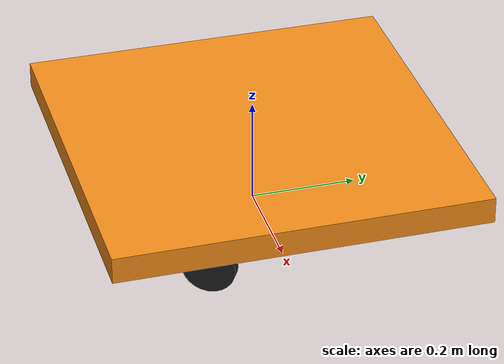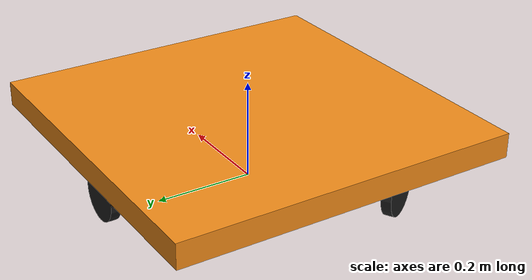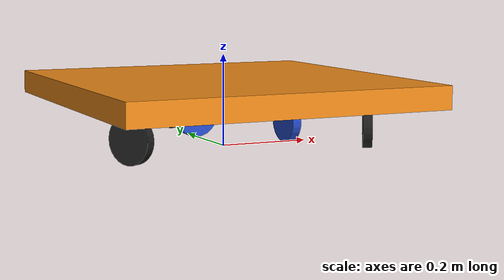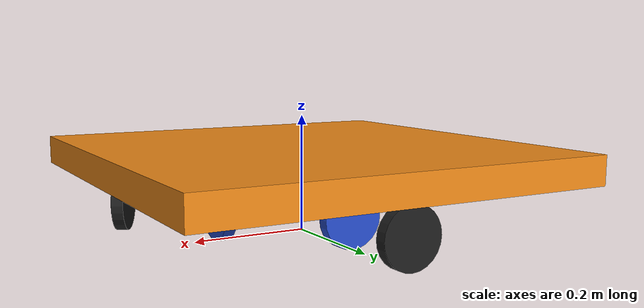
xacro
<?xml version="1.0"?>
<!-- Basic differential drive mobile base -->
<robot xmlns:xacro="http://www.ros.org/wiki/xacro" name="diffdrive_robot">
  <xacro:arg name="prefix" default="" />

  <xacro:include filename="/home/nikhil/Work/ROS/control_ws/src/three_wheel/description/urdf/three_wheel_description.urdf.xacro" />

  <!-- Import Rviz colors -->
  <xacro:include filename="$(find three_wheel)/urdf/three_wheel.materials.xacro" />

  <!-- Import diffbot ros2_control description -->
  <xacro:include filename="$(find three_wheel)/ros2_control/three_wheel.ros2_control.xacro" />

  <xacro:three_wheel prefix="$(arg prefix)" />

  <xacro:three_wheel_ros2_control name="ThreeOmniwheelController" prefix="$(arg prefix)" />

</robot>

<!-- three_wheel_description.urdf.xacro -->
<robot xmlns:xacro="http://www.ros.org/wiki/xacro">

  <xacro:macro name="three_wheel" params="prefix">

  <!-- Constants for robot dimensions -->
  <xacro:property name="PI" value="3.1415926535897931"/>
  <xacro:property name="base_mass" value="0.3" /> <!-- arbitrary value for base mass -->
  <xacro:property name="base_width" value="0.7" />
  <xacro:property name="base_length" value="0.7" />
  <xacro:property name="base_height" value="0.05" />
  <xacro:property name="wheel_mass" value="0.3" /> <!-- arbitrary value for wheel mass -->
  <xacro:property name="wheel_len" value="0.020" />
  <xacro:property name="dist_centre" value="0.312" />
  <xacro:property name="wheel_radius" value="0.05" />
  <xacro:property name="caster_wheel_mass" value="0.1" /> <!-- arbitrary value for caster wheel mass -->
  <xacro:property name="caster_wheel_radius" value="0.015" />
  <xacro:property name="z_offset" value="-${base_height/2}" /> <!-- Space btw top of beam and the each joint -->

  <link name="base_footprint" />    <!-- set base link name -->

  <joint name="footprint_base_joint" type="fixed">     <!-- set joint name and type-->
      <parent link="base_footprint" />
      <child link="base_link" />
      <origin xyz="0 0 ${(2 * wheel_radius) + (base_height / 2.0)}" rpy="0 0 0" />
  </joint>

  <!-- Base Link -->
  <link name="base_link">
    <collision>
      <origin xyz="0 0 0" rpy="0 0 0"/>
      <geometry>
        <box size="${base_width} ${base_length} ${base_height}"/>
      </geometry>
    </collision>

    <visual>
      <origin xyz="0 0 0" rpy="0 0 0"/>
      <geometry>
        <box size="${base_width} ${base_length} ${base_height}"/>
      </geometry>
      <material name="orange"/>
    </visual>

    <inertial>
      <origin xyz="0 0 0" rpy="0 0 0"/>
      <mass value="${base_mass}"/>
      <inertia
        ixx="${base_mass / 12.0 * (base_length*base_length + base_height*base_height)}" ixy="0.0" ixz="0.0"
        iyy="${base_mass / 12.0 * (base_height*base_height + base_length*base_length)}" iyz="0.0"
        izz="${base_mass / 12.0 * (base_width*base_width + base_height*base_height)}"/>
    </inertial>
  </link>

    <joint name="front_wheel_joint" type="continuous">
      <parent link="base_link"/>
      <child link="front_wheel"/>
      <origin xyz="0 ${dist_centre} ${-((wheel_radius) + (base_height / 2.0))}" rpy="0 0 0"/>
      <axis xyz="0 1 0"/>
      <dynamics damping="0.2"/>
    </joint>

    <!-- front wheel Link -->
    <link name="front_wheel">
      <collision>
        <origin xyz="0 0 0" rpy="${PI/2} 0 0"/>
        <geometry>
          <cylinder length="${wheel_len}" radius="${wheel_radius}"/>
        </geometry>
      </collision>

      <visual>
        <origin xyz="0 0 0" rpy="${PI/2} 0 0"/>
        <geometry>
          <cylinder length="${wheel_len}" radius="${wheel_radius}"/>
        </geometry>
        <material name="black"/>
      </visual>

      <inertial>
        <origin xyz="0 0 0" rpy="${PI/2} 0 0"/>
        <mass value="${wheel_mass}"/>
        <inertia
          ixx="${wheel_mass / 12.0 * (3*wheel_radius*wheel_radius + wheel_len*wheel_len)}" ixy="0.0" ixz="0.0"
          iyy="${wheel_mass / 12.0 * (3*wheel_radius*wheel_radius + wheel_len*wheel_len)}" iyz="0.0"
          izz="${wheel_mass / 2.0 * wheel_radius*wheel_radius}"/>
      </inertial>
    </link>

    <joint name="back_right_wheel_joint" type="continuous">
      <parent link="base_link"/>
      <child link="back_right_wheel"/>
      <origin xyz="${(dist_centre * 0.866)} ${-(dist_centre * 0.5)} ${-((wheel_radius) + (base_height / 2.0))}" rpy="0 0 ${PI / 3}"/>
      <axis xyz="0 1 0"/>
      <dynamics damping="0.2"/>
    </joint>

    <!-- right wheel Link -->
    <link name="back_right_wheel">
      <collision>
        <origin xyz="0 0 0" rpy="${PI/2} 0 0"/>
        <geometry>
          <cylinder length="${wheel_len}" radius="${wheel_radius}"/>
        </geometry>
      </collision>

      <visual>
        <origin xyz="0 0 0" rpy="${PI/2} 0 0"/>
        <geometry>
          <cylinder length="${wheel_len}" radius="${wheel_radius}"/>
        </geometry>
        <material name="black"/>
      </visual>

      <inertial>
        <origin xyz="0 0 0" rpy="${PI/2} 0 0"/>
        <mass value="${wheel_mass}"/>
        <inertia
          ixx="${wheel_mass / 12.0 * (3*wheel_radius*wheel_radius + wheel_len*wheel_len)}" ixy="0.0" ixz="0.0"
          iyy="${wheel_mass / 12.0 * (3*wheel_radius*wheel_radius + wheel_len*wheel_len)}" iyz="0.0"
          izz="${wheel_mass / 2.0 * wheel_radius*wheel_radius}"/>
        </inertial>
      </link>

    <joint name="back_left_wheel_joint" type="continuous">
      <parent link="base_link"/>
      <child link="back_left_wheel"/>
      <origin xyz="${- (dist_centre * 0.866)} ${-(dist_centre * 0.5)} ${-((wheel_radius) + (base_height / 2.0))}" rpy="0 0 ${2 * PI / 3}"/>
      <axis xyz="0 1 0"/>
      <dynamics damping="0.2"/>
    </joint>

    <!-- left wheel Link -->
    <link name="back_left_wheel">
      <collision>
        <origin xyz="0 0 0" rpy="${PI/2} 0 0"/>
        <geometry>
          <cylinder length="${wheel_len}" radius="${wheel_radius}"/>
        </geometry>
      </collision>

      <visual>
        <origin xyz="0 0 0" rpy="${PI/2} 0 0"/>
        <geometry>
          <cylinder length="${wheel_len}" radius="${wheel_radius}"/>
        </geometry>
        <material name="black"/>
      </visual>

      <inertial>
        <origin xyz="0 0 0" rpy="${PI/2} 0 0"/>
        <mass value="${wheel_mass}"/>
        <inertia
          ixx="${wheel_mass / 12.0 * (3*wheel_radius*wheel_radius + wheel_len*wheel_len)}" ixy="0.0" ixz="0.0"
          iyy="${wheel_mass / 12.0 * (3*wheel_radius*wheel_radius + wheel_len*wheel_len)}" iyz="0.0"
          izz="${wheel_mass / 2.0 * wheel_radius*wheel_radius}"/>
        </inertial>
      </link>

    <joint name="x_dead_wheel_joint" type="continuous">
      <parent link="base_link"/>
      <child link="x_wheel"/>
      <origin xyz="0 ${dist_centre / 2.0} ${-((wheel_radius) + (base_height / 2.0))}" rpy="0 0 0"/>
      <axis xyz="0 1 0"/>
      <dynamics damping="0.2"/>
    </joint>

    <!-- front wheel Link -->
    <link name="x_wheel">
      <collision>
        <origin xyz="0 0 0" rpy="${PI/2} 0 0"/>
        <geometry>
          <cylinder length="${wheel_len}" radius="${wheel_radius}"/>
        </geometry>
      </collision>

      <visual>
        <origin xyz="0 0 0" rpy="${PI/2} 0 0"/>
        <geometry>
          <cylinder length="${wheel_len}" radius="${wheel_radius}"/>
        </geometry>
        <material name="blue"/>
      </visual>

      <inertial>
        <origin xyz="0 0 0" rpy="${PI/2} 0 0"/>
        <mass value="${wheel_mass}"/>
        <inertia
          ixx="${wheel_mass / 12.0 * (3*wheel_radius*wheel_radius + wheel_len*wheel_len)}" ixy="0.0" ixz="0.0"
          iyy="${wheel_mass / 12.0 * (3*wheel_radius*wheel_radius + wheel_len*wheel_len)}" iyz="0.0"
          izz="${wheel_mass / 2.0 * wheel_radius*wheel_radius}"/>
      </inertial>
    </link>

    <joint name="y_dead_wheel_joint" type="continuous">
      <parent link="base_link"/>
      <child link="y_wheel"/>
      <origin xyz="${dist_centre / 2.0} 0 ${-((wheel_radius) + (base_height / 2.0))}" rpy="0 0 ${PI / 2.0}"/>
      <axis xyz="0 1 0"/>
      <dynamics damping="0.2"/>
    </joint>

    <!-- front wheel Link -->
    <link name="y_wheel">
      <collision>
        <origin xyz="0 0 0" rpy="${PI/2} 0 0"/>
        <geometry>
          <cylinder length="${wheel_len}" radius="${wheel_radius}"/>
        </geometry>
      </collision>

      <visual>
        <origin xyz="0 0 0" rpy="${PI/2} 0 0"/>
        <geometry>
          <cylinder length="${wheel_len}" radius="${wheel_radius}"/>
        </geometry>
        <material name="blue"/>
      </visual>

      <inertial>
        <origin xyz="0 0 0" rpy="${PI/2} 0 0"/>
        <mass value="${wheel_mass}"/>
        <inertia
          ixx="${wheel_mass / 12.0 * (3*wheel_radius*wheel_radius + wheel_len*wheel_len)}" ixy="0.0" ixz="0.0"
          iyy="${wheel_mass / 12.0 * (3*wheel_radius*wheel_radius + wheel_len*wheel_len)}" iyz="0.0"
          izz="${wheel_mass / 2.0 * wheel_radius*wheel_radius}"/>
      </inertial>
    </link>
  </xacro:macro>

</robot>
